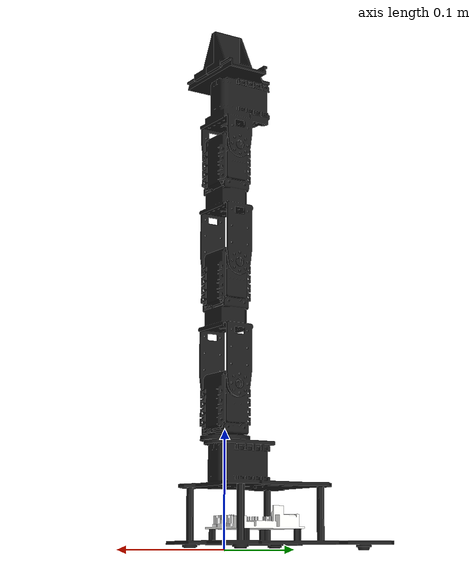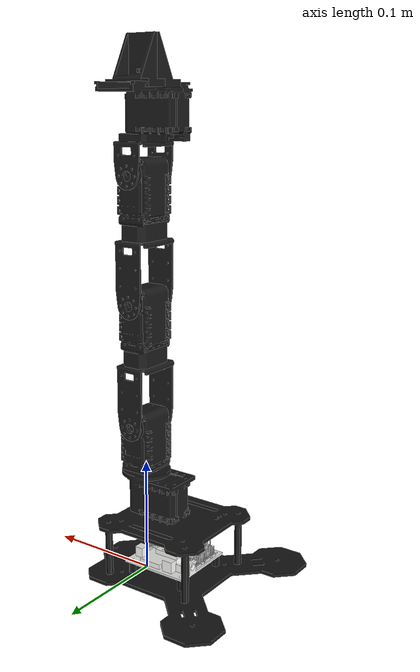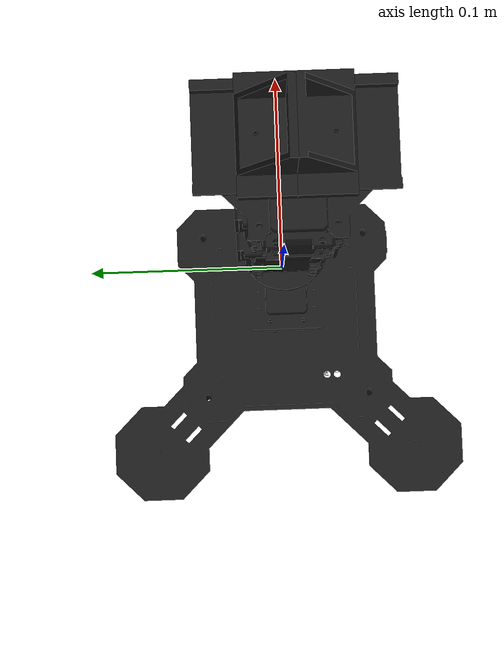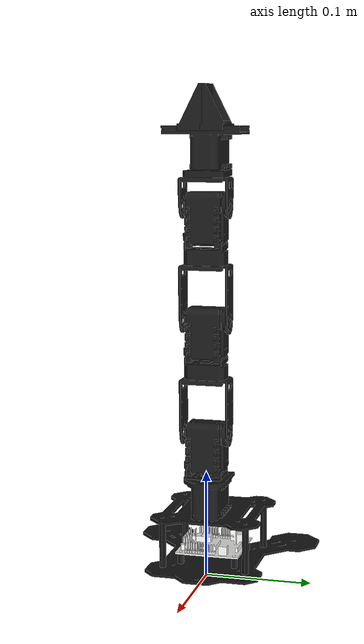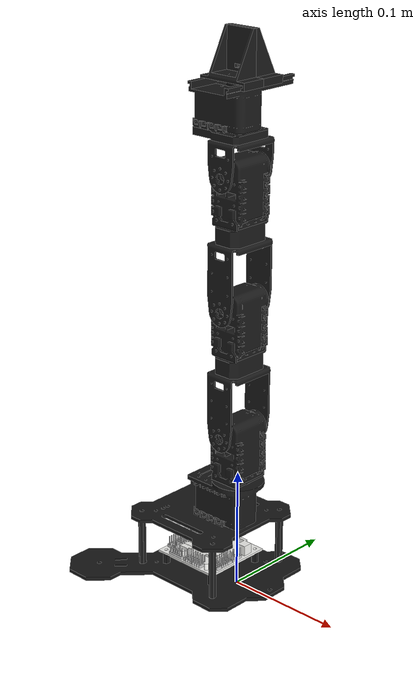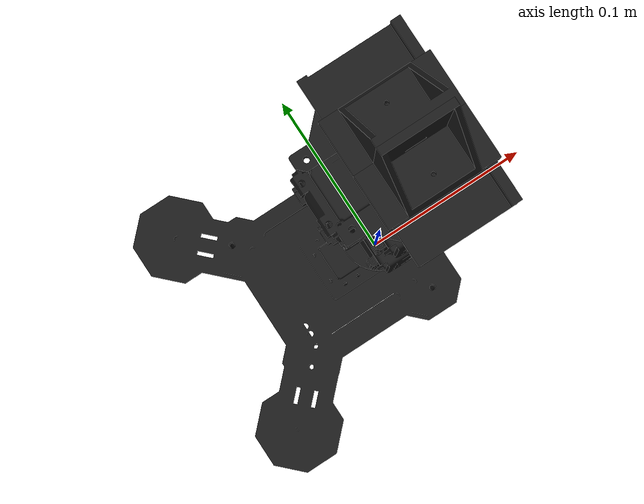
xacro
<?xml version="1.0" ?>
<robot name="Phantom_X" xmlns:xacro="http://www.ros.org/wiki/xacro">

    <xacro:property name="M_PI" value="3.1415926535897931" />

    <link name="world" />

    <!-- Base -->
    <link name="base_link">
        <visual>
            <origin rpy="0 0 0" xyz="0 0 0.000" />
            <geometry>
                <mesh filename="package://phantomx_description/models/phantomx_pincher/meshes/visual/base.dae" scale="1.0 1.0 1.0" />
            </geometry>
        </visual>
        <inertial>
            <mass value="0.352" />
            <origin xyz="-0.027277 -0.000052 0.042715" rpy="0 0 0" />
            <inertia ixx="0.662213" iyy="0.758616" izz="0.717514" ixy="0.000438" ixz="-0.133928" iyz="-0.000837" />
        </inertial>
        <collision>
            <origin xyz="0 0 0" rpy="0 0 0" />
            <geometry>
                <mesh filename="package://phantomx_description/models/phantomx_pincher/meshes/collision/simple_base.dae" scale="1.0 1.0 1.0" />
            </geometry>
        </collision>
    </link>
    <joint name="base_joint" type="fixed">
        <parent link="world" />
        <child link="base_link" />
    </joint>

    <!-- Shoulder -->
    <link name="shoulder_link">
        <visual>
            <origin rpy="0 0 ${M_PI/2}" xyz="0 0 0" />
            <geometry>
                <mesh filename="package://phantomx_description/models/phantomx_pincher/meshes/visual/shoulder.dae" scale="1.0 1.0 1.0" />
            </geometry>
        </visual>
        <inertial>
            <mass value="0.118" />
            <origin xyz="0.001031 -0.000032 -0.013806" rpy="0 0 0" />
            <inertia ixx="0.030893" iyy="0.036432" izz="0.018984" ixy="0.000002" ixz="-0.000383" iyz="-0.000026" />
        </inertial>
        <collision>
            <origin rpy="0 0 ${M_PI/2}" xyz="0 0 0" />
            <geometry>
                <mesh filename="package://phantomx_description/models/phantomx_pincher/meshes/collision/simple_shoulder.dae" scale="1.0 1.0 1.0" />
            </geometry>
        </collision>
    </link>
    <joint name="shoulder_joint" type="revolute">
        <axis xyz="0 0 1" />
        <limit effort="1000.0" lower="-2.617993" upper="2.617993" velocity="0.5" />
        <origin rpy="0 0 0" xyz="0 0 0.137" />
        <parent link="base_link" />
        <child link="shoulder_link" />
    </joint>

    <!-- Lower Arm -->
    <link name="lower_arm_link">
        <visual>
            <origin rpy="0 0 0" xyz="0 0 0" />
            <geometry>
                <mesh filename="package://phantomx_description/models/phantomx_pincher/meshes/visual/lower_arm.dae" scale="1.0 1.0 1.0" />
            </geometry>
        </visual>
        <inertial>
            <mass value="0.162" />
            <origin xyz="0.080988 -0.000023 -0.000748" rpy="0 0 0" />
            <inertia ixx="0.031204" iyy="0.124182" izz="0.111578" ixy="0.00002" ixz="0.001864" iyz="-0.000003" />
        </inertial>
        <collision>
            <origin xyz="0 0 0" rpy="0 0 0" />
            <geometry>
                <mesh filename="package://phantomx_description/models/phantomx_pincher/meshes/collision/simple_bicep.dae" scale="1.0 1.0 1.0" />
            </geometry>
        </collision>
    </link>
    <joint name="lower_arm_joint" type="revolute">
        <axis xyz="0 0 1" />
        <limit effort="1000.0" lower="-2.617993" upper="2.617993" velocity="0.5" />
        <origin rpy="${M_PI/2} -${M_PI/2} 0" xyz="0 0 0" />
        <parent link="shoulder_link" />
        <child link="lower_arm_link" />
    </joint>

    <!-- Upper Arm -->
    <link name="upper_arm_link">
        <visual>
            <origin rpy="0 0 0" xyz="0 0 0" />
            <geometry>
                <mesh filename="package://phantomx_description/models/phantomx_pincher/meshes/visual/upper_arm.dae" scale="1.0 1.0 1.0" />
            </geometry>
        </visual>
        <inertial>
            <mass value="0.162" />
            <origin xyz="0.080988 -0.000023 -0.000748" rpy="0 0 0" />
            <inertia ixx="0.031204" iyy="0.124182" izz="0.111578" ixy="0.00002" ixz="0.001864" iyz="-0.000003" />
        </inertial>
        <collision>
            <origin xyz="0 0 0" rpy="0 0 0" />
            <geometry>
                <mesh filename="package://phantomx_description/models/phantomx_pincher/meshes/collision/simple_bicep.dae" scale="1.0 1.0 1.0" />
            </geometry>
        </collision>
    </link>
    <joint name="upper_arm_joint" type="revolute">
        <axis xyz="0 0 1" />
        <limit effort="1000.0" lower="-2.617993" upper="2.617993" velocity="0.5" />
        <origin rpy="0 0 0" xyz="0.105 0 0" />
        <parent link="lower_arm_link" />
        <child link="upper_arm_link" />
    </joint>

    <!-- Gripper Body -->
    <link name="wrist_link">
        <visual>
            <origin rpy="0 0 0" xyz="0 0 0" />
            <geometry>
                <mesh filename="package://phantomx_description/models/phantomx_pincher/meshes/visual/gripper_body.dae" scale="1.0 1.0 1.0" />
            </geometry>
        </visual>
        <inertial>
            <mass value="0.160" />
            <origin xyz="0.047054 0.009939 -0.000023" rpy="0 0 0" />
            <inertia ixx="0.053897" iyy="0.057629" izz="0.068868" ixy="-0.002353" ixz="0.000011" iyz="0.000041" />
        </inertial>
        <collision>
            <origin xyz="0 0 0" rpy="0 0 0" />
            <geometry>
                <mesh filename="package://phantomx_description/models/phantomx_pincher/meshes/collision/simple_wrist.dae" scale="1.0 1.0 1.0" />
            </geometry>
        </collision>
    </link>
    <joint name="wrist_joint" type="revolute">
        <axis xyz="0 0 1" />
        <origin rpy="0 0 0" xyz="0.105 0 0" />
        <limit effort="1000.0" lower="-2.617993" upper="2.617993" velocity="0.5" />
        <parent link="upper_arm_link" />
        <child link="wrist_link" />
    </joint>

    <!-- Finger_1 -->
    <link name="finger_1_link">
        <visual>
            <origin rpy="0 0 0" xyz="0 0 0" />
            <geometry>
                <mesh filename="package://phantomx_description/models/phantomx_pincher/meshes/visual/finger.dae" scale="1.0 1.0 1.0" />
            </geometry>
        </visual>
        <inertial>
            <mass value="0.018" />
            <origin xyz="0.010769 0 -0.007406" rpy="0 0 0" />
            <inertia ixx="0.002959" iyy="0.00287" izz="0.004524" ixy="0" ixz="-0.000707" iyz="0" />
        </inertial>
        <collision>
            <origin rpy="0 0 0" xyz="0 0 0" />
            <geometry>
                <mesh filename="package://phantomx_description/models/phantomx_pincher/meshes/collision/simple_finger.dae" scale="1.0 1.0 1.0" />
            </geometry>
        </collision>
    </link>
    <joint name="finger_1_joint" type="prismatic">
        <axis xyz="0 0 1" />
        <origin rpy="0 0 0" xyz="0.071844 0 0" />
        <limit effort="1000.0" lower="0" upper="0.015" velocity="0.5" />
        <parent link="wrist_link" />
        <child link="finger_1_link" />
    </joint>

    <!-- Finger_2 -->
    <link name="finger_2_link">
        <visual>
            <origin rpy="0 0 0" xyz="0 0 0" />
            <geometry>
                <mesh filename="package://phantomx_description/models/phantomx_pincher/meshes/visual/finger.dae" scale="1.0 1.0 1.0" />
            </geometry>
        </visual>
        <inertial>
            <mass value="0.018" />
            <origin xyz="0.010769 0 -0.007406" rpy="0 0 0" />
            <inertia ixx="0.002959" iyy="0.00287" izz="0.004524" ixy="0" ixz="-0.000707" iyz="0" />
        </inertial>
        <collision>
            <origin rpy="0 0 0" xyz="0 0 0" />
            <geometry>
                <mesh filename="package://phantomx_description/models/phantomx_pincher/meshes/collision/simple_finger.dae" scale="1.0 1.0 1.0" />
            </geometry>
        </collision>
    </link>
    <joint name="finger_2_joint" type="prismatic">
        <axis xyz="0 0 1" />
        <origin rpy="${M_PI} 0 0" xyz="0.071844 0 0" />
        <limit effort="1000.0" lower="0" upper="0.015" velocity="0.5" />
        <parent link="wrist_link" />
        <child link="finger_2_link" />
        <mimic joint="finger_1_joint" multiplier="1" offset="0" />
    </joint>

    <!-- Tool -->
    <link name="tool_link">
        <inertial>
            <mass value="0.0001" />
            <origin xyz="0 0 0" />
            <inertia ixx="0.00001" iyy="0.00001" izz="0.00001" ixy="0.0" ixz="0.0" iyz="0.0" />
        </inertial>
    </link>
    <joint name="tool_joint" type="fixed">
        <axis xyz="0 0 1" />
        <origin rpy="${M_PI} -${M_PI/2} 0" xyz="0.110 0 0" />
        <parent link="wrist_link" />
        <child link="tool_link" />
    </joint>

    <!-- Transmissions -->
    <transmission name="trans_shoulder_joint">
        <type>transmission_interface/SimpleTransmission</type>
        <joint name="shoulder_joint">
            <hardwareInterface>hardware_interface/EffortJointInterface</hardwareInterface>
        </joint>
        <actuator name="shoulder_joint_motor">
            <hardwareInterface>hardware_interface/EffortJointInterface</hardwareInterface>
            <mechanicalReduction>1</mechanicalReduction>
        </actuator>
    </transmission>

    <transmission name="trans_lower_arm_joint">
        <type>transmission_interface/SimpleTransmission</type>
        <joint name="lower_arm_joint">
            <hardwareInterface>hardware_interface/EffortJointInterface</hardwareInterface>
        </joint>
        <actuator name="lower_arm_joint_motor">
            <hardwareInterface>hardware_interface/EffortJointInterface</hardwareInterface>
            <mechanicalReduction>1</mechanicalReduction>
        </actuator>
    </transmission>

    <transmission name="trans_upper_arm_joint">
        <type>transmission_interface/SimpleTransmission</type>
        <joint name="upper_arm_joint">
            <hardwareInterface>hardware_interface/EffortJointInterface</hardwareInterface>
        </joint>
        <actuator name="upper_arm_joint_motor">
            <hardwareInterface>hardware_interface/EffortJointInterface</hardwareInterface>
            <mechanicalReduction>1</mechanicalReduction>
        </actuator>
    </transmission>

    <transmission name="trans_wrist_joint">
        <type>transmission_interface/SimpleTransmission</type>
        <joint name="wrist_joint">
            <hardwareInterface>hardware_interface/EffortJointInterface</hardwareInterface>
        </joint>
        <actuator name="wrist_joint_motor">
            <hardwareInterface>hardware_interface/EffortJointInterface</hardwareInterface>
            <mechanicalReduction>1</mechanicalReduction>
        </actuator>
    </transmission>

    <transmission name="trans_finger_1_joint">
        <type>transmission_interface/SimpleTransmission</type>
        <joint name="finger_1_joint">
            <hardwareInterface>hardware_interface/EffortJointInterface</hardwareInterface>
        </joint>
        <actuator name="finger_1_joint_motor">
            <hardwareInterface>hardware_interface/EffortJointInterface</hardwareInterface>
            <mechanicalReduction>1</mechanicalReduction>
        </actuator>
    </transmission>

    <transmission name="trans_finger_2_joint">
        <type>transmission_interface/SimpleTransmission</type>
        <joint name="finger_2_joint">
            <hardwareInterface>hardware_interface/EffortJointInterface</hardwareInterface>
        </joint>
        <actuator name="finger_2_joint_motor">
            <hardwareInterface>hardware_interface/EffortJointInterface</hardwareInterface>
            <mechanicalReduction>1</mechanicalReduction>
        </actuator>
    </transmission>

    <!-- Gazebo Plugins -->
    <gazebo>
        <plugin name="gazebo_ros_control" filename="libgazebo_ros_control.so" />
    </gazebo>
    <gazebo>
        <plugin name="joint_state_publisher" filename="libgazebo_ros_joint_state_publisher.so">
            <jointName>shoulder_joint, lower_arm_joint, upper_arm_joint, wrist_joint, finger_1_joint, finger_2_joint</jointName>
        </plugin>
    </gazebo>
    <gazebo>
        <plugin name="gazebo_grasp_fix" filename="libgazebo_grasp_fix.so">
            <arm>
                <arm_name>Phantom_X</arm_name>
                <palm_link> wrist_link  </palm_link>
                <gripper_link> finger_1_link </gripper_link>
                <gripper_link> finger_2_link </gripper_link>
            </arm>
            <forces_angle_tolerance>100</forces_angle_tolerance>
            <update_rate>100</update_rate>
            <grip_count_threshold>4</grip_count_threshold>
            <max_grip_count>8</max_grip_count>
            <release_tolerance>0.001</release_tolerance>
            <disable_collisions_on_attach>false</disable_collisions_on_attach>
            <contact_topic>__default_topic__</contact_topic>
        </plugin>
    </gazebo>

</robot>
